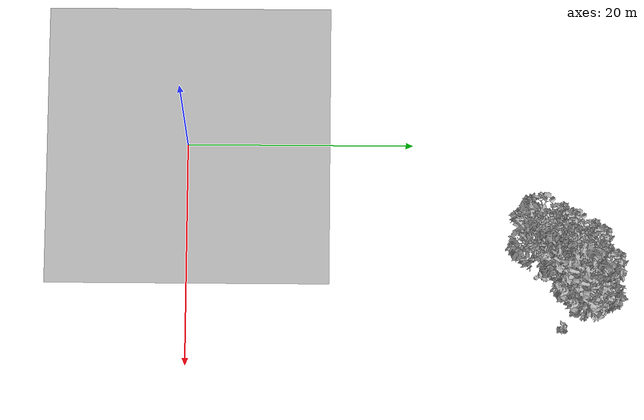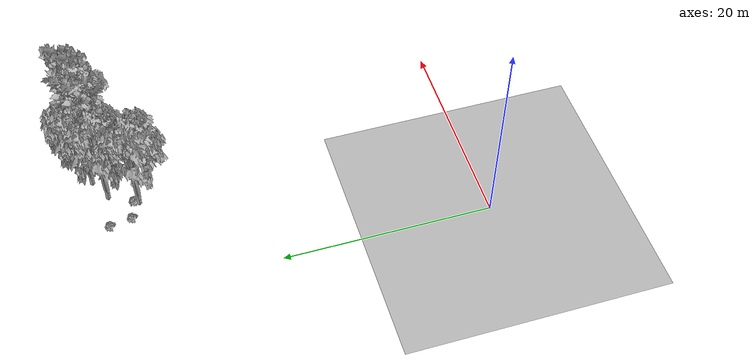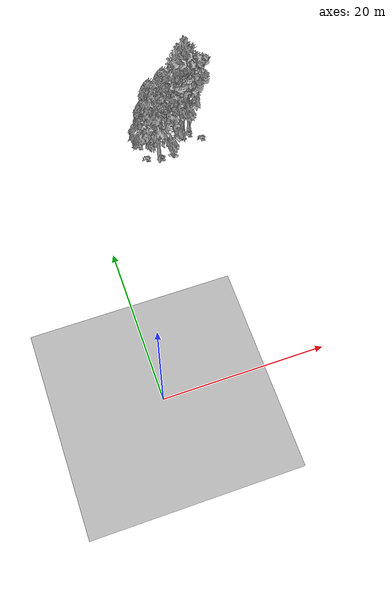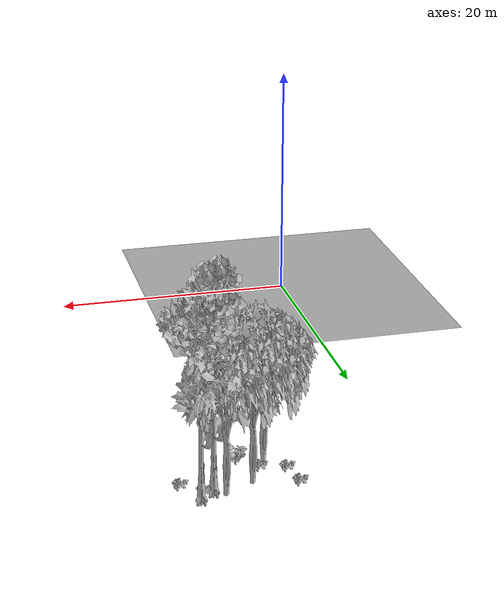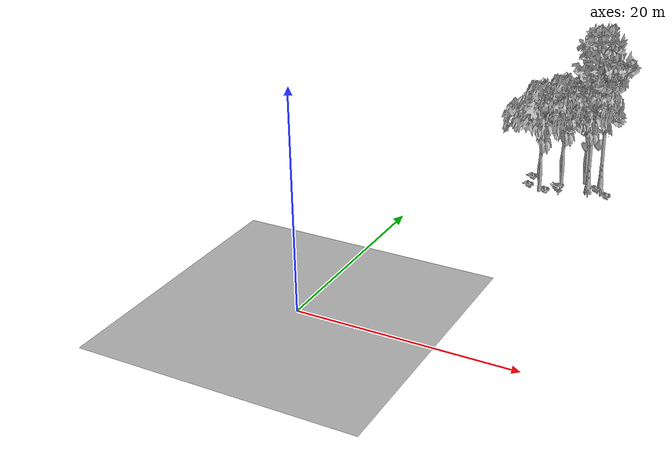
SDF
<sdf version="1.7">
 <world name="default">
  <model name="ground_plane">
   <static>1</static>
   <link name="link">
    <collision name="collision">
     <pose>-50 0 0 0 -0 0</pose>
     <geometry><plane><normal>0 0 1</normal><size>80 80</size></plane></geometry>
     <surface><contact><ode><min_depth>0.01</min_depth><max_vel>0</max_vel></ode></contact></surface>
    </collision>
    <visual name="grass">
     <cast_shadows>0</cast_shadows>
     <geometry>
      <mesh>
       <scale>0.46714285714285714 0.46714285714285714 0.1</scale>
       <uri>file://grass_plane/meshes/grass_plane.dae</uri>
      </mesh>
     </geometry>
    </visual>
   </link>
  </model>
  <model name="Tree 66">
   <static>1</static>
   <pose>14.241792973476933 34.242874181324424 0 1.57079 -0 0</pose>
   <link name="link">
    <collision name="collision">
     <geometry><mesh><scale>3.5 5 3.5</scale><uri>model://tree_9/meshes/tree_9.obj</uri></mesh></geometry>
    </collision>
    <visual name="visual">
     <geometry><mesh><scale>3.5 5 3.5</scale><uri>model://tree_9/meshes/tree_9.obj</uri></mesh></geometry>
    </visual>
   </link>
  </model>
  <model name="Tree 245">
   <static>1</static>
   <pose>15.303969761358914 35.093593969870184 0 1.57079 -0 0</pose>
   <link name="link">
    <collision name="collision">
     <geometry><mesh><scale>3.5 5 3.5</scale><uri>model://tree_9/meshes/tree_9.obj</uri></mesh></geometry>
    </collision>
    <visual name="visual">
     <geometry><mesh><scale>3.5 5 3.5</scale><uri>model://tree_9/meshes/tree_9.obj</uri></mesh></geometry>
    </visual>
   </link>
  </model>
  <model name="Tree 489">
   <static>1</static>
   <pose>9.878690239045142 31.399625493250227 0 1.57079 -0 0</pose>
   <link name="link">
    <collision name="collision">
     <geometry><mesh><scale>3.5 5 3.5</scale><uri>model://tree_2/meshes/tree_2.obj</uri></mesh></geometry>
    </collision>
    <visual name="visual">
     <geometry><mesh><scale>3.5 5 3.5</scale><uri>model://tree_2/meshes/tree_2.obj</uri></mesh></geometry>
    </visual>
   </link>
  </model>
  <model name="Tree 511">
   <static>1</static>
   <pose>13.500521646098484 35.265061480976584 0 1.57079 -0 0</pose>
   <link name="link">
    <collision name="collision">
     <geometry><mesh><scale>3.5 5 3.5</scale><uri>model://tree_2/meshes/tree_2.obj</uri></mesh></geometry>
    </collision>
    <visual name="visual">
     <geometry><mesh><scale>3.5 5 3.5</scale><uri>model://tree_2/meshes/tree_2.obj</uri></mesh></geometry>
    </visual>
   </link>
  </model>
  <model name="Tree 608">
   <static>1</static>
   <pose>11.33500142180771 34.10172277998318 0 1.57079 -0 0</pose>
   <link name="link">
    <collision name="collision">
     <geometry><mesh><scale>3.5 5 3.5</scale><uri>model://tree_2/meshes/tree_2.obj</uri></mesh></geometry>
    </collision>
    <visual name="visual">
     <geometry><mesh><scale>3.5 5 3.5</scale><uri>model://tree_2/meshes/tree_2.obj</uri></mesh></geometry>
    </visual>
   </link>
  </model>
  <model name="Bush 193">
   <static>1</static>
   <pose>11.985936630391556 31.394995933851703 0 1.57079 -0 0</pose>
   <link name="link">
    <collision name="collision">
     <geometry><mesh><scale>2 2 2</scale><uri>model://bush_0/meshes/bush_0.obj</uri></mesh></geometry>
     <surface><contact><collide_without_contact>false</collide_without_contact></contact></surface>
    </collision>
    <visual name="visual">
     <geometry><mesh><scale>2 2 2</scale><uri>model://bush_0/meshes/bush_0.obj</uri></mesh></geometry>
    </visual>
   </link>
  </model>
  <model name="Bush 231">
   <static>1</static>
   <pose>8.435018656660574 32.36681675749138 0 1.57079 -0 0</pose>
   <link name="link">
    <collision name="collision">
     <geometry><mesh><scale>2 2 2</scale><uri>model://bush_2/meshes/bush_2.obj</uri></mesh></geometry>
     <surface><contact><collide_without_contact>false</collide_without_contact></contact></surface>
    </collision>
    <visual name="visual">
     <geometry><mesh><scale>2 2 2</scale><uri>model://bush_2/meshes/bush_2.obj</uri></mesh></geometry>
    </visual>
   </link>
  </model>
  <model name="Bush 365">
   <static>1</static>
   <pose>14.956379262750303 34.30592388161715 0 1.57079 -0 0</pose>
   <link name="link">
    <collision name="collision">
     <geometry><mesh><scale>2 2 2</scale><uri>model://bush_2/meshes/bush_2.obj</uri></mesh></geometry>
     <surface><contact><collide_without_contact>false</collide_without_contact></contact></surface>
    </collision>
    <visual name="visual">
     <geometry><mesh><scale>2 2 2</scale><uri>model://bush_2/meshes/bush_2.obj</uri></mesh></geometry>
    </visual>
   </link>
  </model>
  <model name="Bush 473">
   <static>1</static>
   <pose>16.42813120212996 33.168132007554306 0 1.57079 -0 0</pose>
   <link name="link">
    <collision name="collision">
     <geometry><mesh><scale>2 2 2</scale><uri>model://bush_2/meshes/bush_2.obj</uri></mesh></geometry>
     <surface><contact><collide_without_contact>false</collide_without_contact></contact></surface>
    </collision>
    <visual name="visual">
     <geometry><mesh><scale>2 2 2</scale><uri>model://bush_2/meshes/bush_2.obj</uri></mesh></geometry>
    </visual>
   </link>
  </model>
  <model name="Bush 564">
   <static>1</static>
   <pose>8.06054525155755 34.49483474882071 0 1.57079 -0 0</pose>
   <link name="link">
    <collision name="collision">
     <geometry><mesh><scale>2 2 2</scale><uri>model://bush_2/meshes/bush_2.obj</uri></mesh></geometry>
     <surface><contact><collide_without_contact>false</collide_without_contact></contact></surface>
    </collision>
    <visual name="visual">
     <geometry><mesh><scale>2 2 2</scale><uri>model://bush_2/meshes/bush_2.obj</uri></mesh></geometry>
    </visual>
   </link>
  </model>
  <model name="Bush 637">
   <static>1</static>
   <pose>10.334120061751214 31.867964229252635 0 1.57079 -0 0</pose>
   <link name="link">
    <collision name="collision">
     <geometry><mesh><scale>2 2 2</scale><uri>model://bush_2/meshes/bush_2.obj</uri></mesh></geometry>
     <surface><contact><collide_without_contact>false</collide_without_contact></contact></surface>
    </collision>
    <visual name="visual">
     <geometry><mesh><scale>2 2 2</scale><uri>model://bush_2/meshes/bush_2.obj</uri></mesh></geometry>
    </visual>
   </link>
  </model>
 </world>
</sdf>
